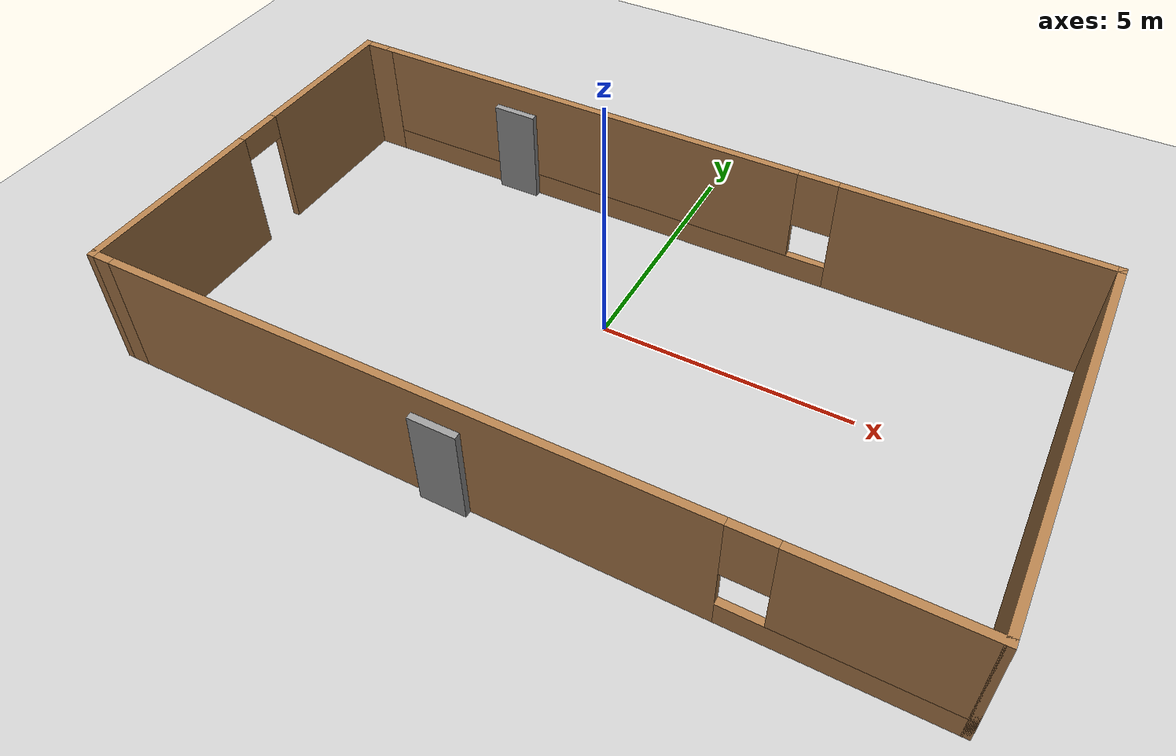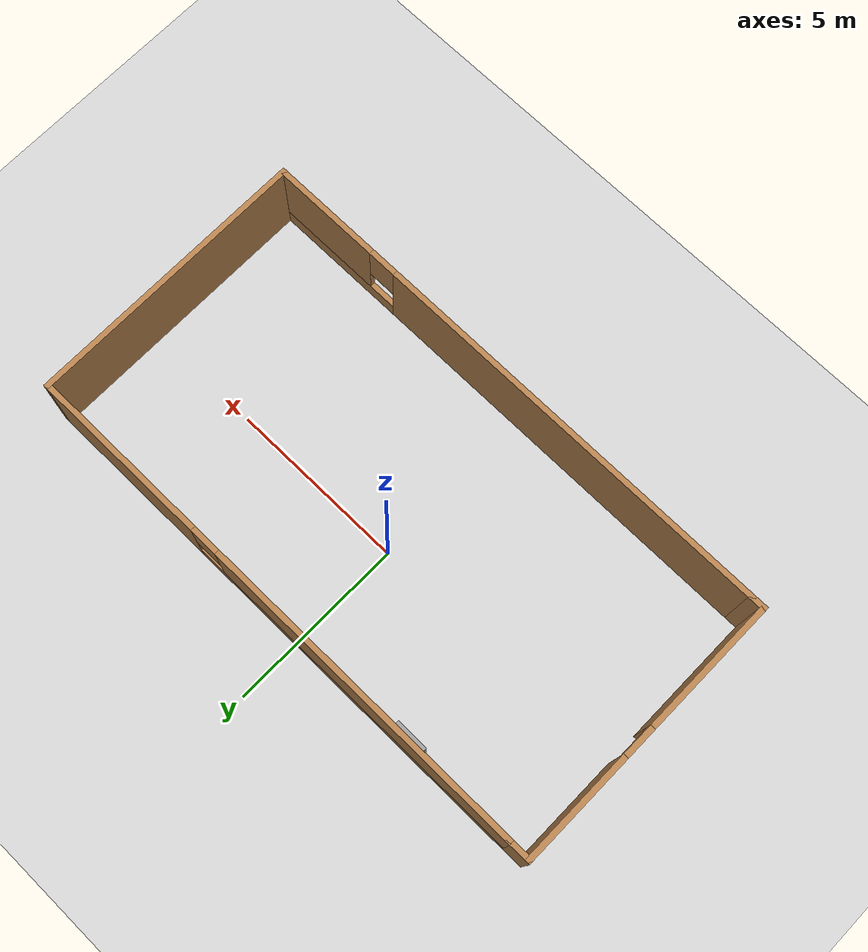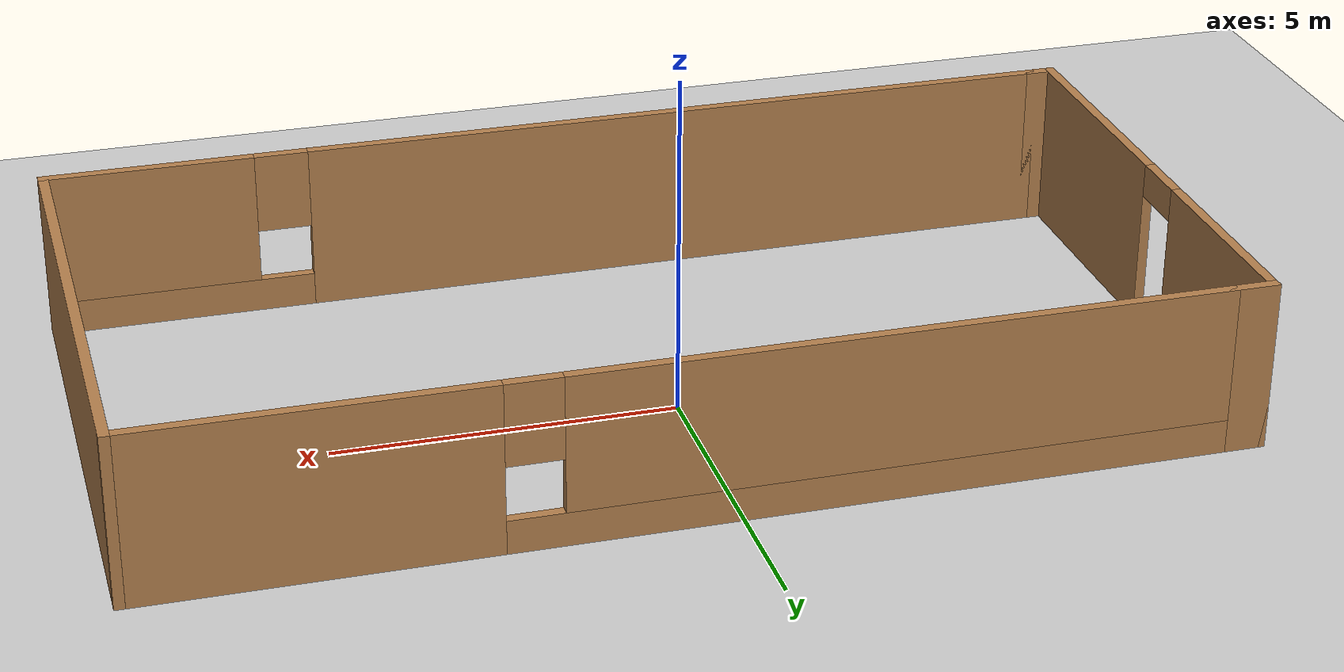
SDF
<sdf version="1.7">
 <world name="default">
  <light name="sun" type="directional">
   <pose>0 0 10 0 -0 0</pose>
   <diffuse>0.8 0.8 0.8 1</diffuse>
   <specular>0.2 0.2 0.2 1</specular>
   <attenuation>
    <range>1000</range>
    <constant>0.9</constant>
    <linear>0.01</linear>
    <quadratic>0.001</quadratic>
   </attenuation>
   <direction>-0.5 0.1 -0.9</direction>
   <spot><inner_angle>0</inner_angle><outer_angle>0</outer_angle><falloff>0</falloff></spot>
  </light>
  <model name="ground_plane">
   <static>1</static>
   <link name="link">
    <collision name="collision">
     <geometry><plane><normal>0 0 1</normal><size>100 100</size></plane></geometry>
     <surface>
      <contact><collide_bitmask>65535</collide_bitmask></contact>
      <friction><ode><mu>100</mu><mu2>50</mu2></ode></friction>
     </surface>
    </collision>
    <visual name="visual">
     <cast_shadows>0</cast_shadows>
     <geometry><plane><normal>0 0 1</normal><size>100 100</size></plane></geometry>
     <material>
      <script><uri>file://media/materials/scripts/gazebo.material</uri><name>Gazebo/Grey</name></script>
     </material>
    </visual>
   </link>
  </model>
  <gravity>0 0 -9.8</gravity>
  <magnetic_field>6e-06 2.3e-05 -4.2e-05</magnetic_field>
  <atmosphere type="adiabatic"/>
  <physics type="ode">
   <max_step_size>0.001</max_step_size>
   <real_time_factor>1</real_time_factor>
   <real_time_update_rate>1000</real_time_update_rate>
  </physics>
  <scene><ambient>0.4 0.4 0.4 1</ambient><background>0.7 0.7 0.7 1</background><shadows>1</shadows></scene>
  <audio><device>default</device></audio>
  <spherical_coordinates>
   <surface_model>EARTH_WGS84</surface_model>
   <latitude_deg>0</latitude_deg>
   <longitude_deg>0</longitude_deg>
   <elevation>0</elevation>
   <heading_deg>0</heading_deg>
  </spherical_coordinates>
  <model name="test_env">
   <pose>0.39897 -0.78425 0 0 -0 0</pose>
   <link name="Door_2">
    <collision name="Door_2_Collision">
     <geometry><box><size>0.9 0.17 2</size></box></geometry>
     <pose>0 0 1 0 -0 0</pose>
    </collision>
    <visual name="Door_2_Visual">
     <pose>0 0 1 0 -0 0</pose>
     <geometry><box><size>0.9 0.17 2</size></box></geometry>
     <material>
      <script><uri>file://media/materials/scripts/gazebo.material</uri><name>Gazebo/Grey</name></script>
     </material>
    </visual>
    <pose>-4.07774 3.80244 0 0 -0 0</pose>
   </link>
   <link name="Door_3">
    <collision name="Door_3_Collision">
     <geometry><box><size>0.9 0.17 2</size></box></geometry>
     <pose>0 0 1 0 -0 0</pose>
    </collision>
    <visual name="Door_3_Visual">
     <pose>0 0 1 0 -0 0</pose>
     <geometry><box><size>0.9 0.17 2</size></box></geometry>
     <material>
      <script><uri>file://media/materials/scripts/gazebo.material</uri><name>Gazebo/Grey</name></script>
     </material>
    </visual>
    <pose>-0.800835 -4.04594 0 0 -0 0</pose>
   </link>
   <link name="Wall_14">
    <pose>0.175 -3.925 0 0 -0 0</pose>
    <visual name="Wall_14_Visual_0">
     <pose>-1.97376 0 1.25 0 -0 0</pose>
     <geometry><box><size>11.5525 0.15 2.5</size></box></geometry>
     <material>
      <script><uri>file://media/materials/scripts/gazebo.material</uri><name>Gazebo/Wood</name></script>
      <ambient>1 1 1 1</ambient>
     </material>
     <meta><layer>0</layer></meta>
    </visual>
    <collision name="Wall_14_Collision_0">
     <geometry><box><size>11.5525 0.15 2.5</size></box></geometry>
     <pose>-1.97376 0 1.25 0 -0 0</pose>
    </collision>
    <visual name="Wall_14_Visual_1">
     <pose>5.77624 0 0.25 0 -0 0</pose>
     <geometry><box><size>3.94752 0.15 0.5</size></box></geometry>
     <material>
      <script><uri>file://media/materials/scripts/gazebo.material</uri><name>Gazebo/Wood</name></script>
      <ambient>1 1 1 1</ambient>
     </material>
     <meta><layer>0</layer></meta>
    </visual>
    <collision name="Wall_14_Collision_1">
     <geometry><box><size>3.94752 0.15 0.5</size></box></geometry>
     <pose>5.77624 0 0.25 0 -0 0</pose>
    </collision>
    <visual name="Wall_14_Visual_2">
     <pose>6.17624 0 1.5 0 -0 0</pose>
     <geometry><box><size>3.14752 0.15 2</size></box></geometry>
     <material>
      <script><uri>file://media/materials/scripts/gazebo.material</uri><name>Gazebo/Wood</name></script>
      <ambient>1 1 1 1</ambient>
     </material>
     <meta><layer>0</layer></meta>
    </visual>
    <collision name="Wall_14_Collision_2">
     <geometry><box><size>3.14752 0.15 2</size></box></geometry>
     <pose>6.17624 0 1.5 0 -0 0</pose>
    </collision>
    <visual name="Wall_14_Visual_3">
     <pose>4.20248 0 1.9 0 -0 0</pose>
     <geometry><box><size>0.8 0.15 1.2</size></box></geometry>
     <material>
      <script><uri>file://media/materials/scripts/gazebo.material</uri><name>Gazebo/Wood</name></script>
      <ambient>1 1 1 1</ambient>
     </material>
     <meta><layer>0</layer></meta>
    </visual>
    <collision name="Wall_14_Collision_3">
     <geometry><box><size>0.8 0.15 1.2</size></box></geometry>
     <pose>4.20248 0 1.9 0 -0 0</pose>
    </collision>
   </link>
   <link name="Wall_15">
    <collision name="Wall_15_Collision">
     <geometry><box><size>8 0.15 2.5</size></box></geometry>
     <pose>0 0 1.25 0 -0 0</pose>
    </collision>
    <visual name="Wall_15_Visual">
     <pose>0 0 1.25 0 -0 0</pose>
     <geometry><box><size>8 0.15 2.5</size></box></geometry>
     <material>
      <script><uri>file://media/materials/scripts/gazebo.material</uri><name>Gazebo/Wood</name></script>
      <ambient>1 1 1 1</ambient>
     </material>
     <meta><layer>0</layer></meta>
    </visual>
    <pose>7.85 -0 0 0 -0 1.5708</pose>
   </link>
   <link name="Wall_16">
    <pose>0.3 3.925 0 0 -0 3.14159</pose>
    <visual name="Wall_16_Visual_0">
     <pose>-5.08031 0 1.25 0 -0 0</pose>
     <geometry><box><size>5.08939 0.15 2.5</size></box></geometry>
     <material>
      <script><uri>file://media/materials/scripts/gazebo.material</uri><name>Gazebo/Wood</name></script>
      <ambient>1 1 1 1</ambient>
     </material>
     <meta><layer>0</layer></meta>
    </visual>
    <collision name="Wall_16_Collision_0">
     <geometry><box><size>5.08939 0.15 2.5</size></box></geometry>
     <pose>-5.08031 0 1.25 0 -0 0</pose>
    </collision>
    <visual name="Wall_16_Visual_1">
     <pose>2.54469 0 0.25 0 -0 0</pose>
     <geometry><box><size>10.1606 0.15 0.5</size></box></geometry>
     <material>
      <script><uri>file://media/materials/scripts/gazebo.material</uri><name>Gazebo/Wood</name></script>
      <ambient>1 1 1 1</ambient>
     </material>
     <meta><layer>0</layer></meta>
    </visual>
    <collision name="Wall_16_Collision_1">
     <geometry><box><size>10.1606 0.15 0.5</size></box></geometry>
     <pose>2.54469 0 0.25 0 -0 0</pose>
    </collision>
    <visual name="Wall_16_Visual_2">
     <pose>2.94469 0 1.5 0 -0 0</pose>
     <geometry><box><size>9.36061 0.15 2</size></box></geometry>
     <material>
      <script><uri>file://media/materials/scripts/gazebo.material</uri><name>Gazebo/Wood</name></script>
      <ambient>1 1 1 1</ambient>
     </material>
     <meta><layer>0</layer></meta>
    </visual>
    <collision name="Wall_16_Collision_2">
     <geometry><box><size>9.36061 0.15 2</size></box></geometry>
     <pose>2.94469 0 1.5 0 -0 0</pose>
    </collision>
    <visual name="Wall_16_Visual_3">
     <pose>-2.13561 0 1.9 0 -0 0</pose>
     <geometry><box><size>0.8 0.15 1.2</size></box></geometry>
     <material>
      <script><uri>file://media/materials/scripts/gazebo.material</uri><name>Gazebo/Wood</name></script>
      <ambient>1 1 1 1</ambient>
     </material>
     <meta><layer>0</layer></meta>
    </visual>
    <collision name="Wall_16_Collision_3">
     <geometry><box><size>0.8 0.15 1.2</size></box></geometry>
     <pose>-2.13561 0 1.9 0 -0 0</pose>
    </collision>
   </link>
   <link name="Wall_17">
    <collision name="Wall_17_Collision">
     <geometry><box><size>0.75 0.15 2.5</size></box></geometry>
     <pose>0 0 1.25 0 -0 0</pose>
    </collision>
    <visual name="Wall_17_Visual">
     <pose>0 0 1.25 0 -0 0</pose>
     <geometry><box><size>0.75 0.15 2.5</size></box></geometry>
     <material>
      <script><uri>file://media/materials/scripts/gazebo.material</uri><name>Gazebo/Wood</name></script>
      <ambient>1 1 1 1</ambient>
     </material>
     <meta><layer>0</layer></meta>
    </visual>
    <pose>-7.55 3.925 0 0 -0 3.14159</pose>
   </link>
   <link name="Wall_18">
    <pose>-7.85 -0 0 0 -0 -1.5708</pose>
    <visual name="Wall_18_Visual_0">
     <pose>-2.38663 0 1.25 0 -0 0</pose>
     <geometry><box><size>3.22674 0.15 2.5</size></box></geometry>
     <material>
      <script><uri>file://media/materials/scripts/gazebo.material</uri><name>Gazebo/Wood</name></script>
      <ambient>1 1 1 1</ambient>
     </material>
     <meta><layer>0</layer></meta>
    </visual>
    <collision name="Wall_18_Collision_0">
     <geometry><box><size>3.22674 0.15 2.5</size></box></geometry>
     <pose>-2.38663 0 1.25 0 -0 0</pose>
    </collision>
    <visual name="Wall_18_Visual_1">
     <pose>2.06337 0 1.25 0 -0 0</pose>
     <geometry><box><size>3.87326 0.15 2.5</size></box></geometry>
     <material>
      <script><uri>file://media/materials/scripts/gazebo.material</uri><name>Gazebo/Wood</name></script>
      <ambient>1 1 1 1</ambient>
     </material>
     <meta><layer>0</layer></meta>
    </visual>
    <collision name="Wall_18_Collision_1">
     <geometry><box><size>3.87326 0.15 2.5</size></box></geometry>
     <pose>2.06337 0 1.25 0 -0 0</pose>
    </collision>
    <visual name="Wall_18_Visual_2">
     <pose>-0.323259 0 2.25 0 -0 0</pose>
     <geometry><box><size>0.9 0.15 0.5</size></box></geometry>
     <material>
      <script><uri>file://media/materials/scripts/gazebo.material</uri><name>Gazebo/Wood</name></script>
      <ambient>1 1 1 1</ambient>
     </material>
     <meta><layer>0</layer></meta>
    </visual>
    <collision name="Wall_18_Collision_2">
     <geometry><box><size>0.9 0.15 0.5</size></box></geometry>
     <pose>-0.323259 0 2.25 0 -0 0</pose>
    </collision>
   </link>
   <link name="Wall_19">
    <collision name="Wall_19_Collision">
     <geometry><box><size>0.5 0.15 2.5</size></box></geometry>
     <pose>0 0 1.25 0 -0 0</pose>
    </collision>
    <visual name="Wall_19_Visual">
     <pose>0 0 1.25 0 -0 0</pose>
     <geometry><box><size>0.5 0.15 2.5</size></box></geometry>
     <material>
      <script><uri>file://media/materials/scripts/gazebo.material</uri><name>Gazebo/Wood</name></script>
      <ambient>1 1 1 1</ambient>
     </material>
     <meta><layer>0</layer></meta>
    </visual>
    <pose>-7.675 -3.925 0 0 -0 0</pose>
   </link>
   <static>1</static>
  </model>
 </world>
</sdf>
